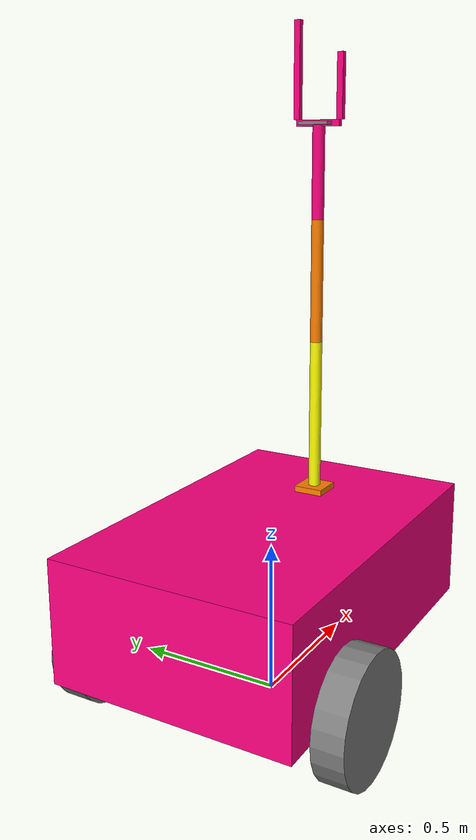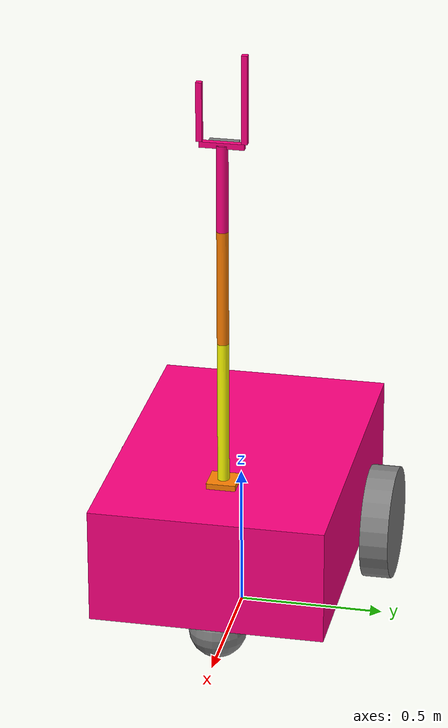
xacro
<?xml version="1.0"?>
<robot name="my_robot" xmlns:xacro="http://www.ros.org/wiki/xacro">

    <xacro:include filename="common_properties.xacro" />
    <xacro:include filename="mobile_base.xacro" />
    <xacro:include filename="mobile_base_gazebo.xacro" />
    <xacro:include filename="arm.xacro" />
    <xacro:include filename="arm_gazebo.xacro" />
    <xacro:include filename="camera.xacro" />

    <joint name = "mobile_base_arm_joint" type = "revolute">
        <parent link = "base_link"/>
        <child link = "arm_base_link"/>
        <origin xyz = "${base_length/4} 0 ${base_height}" rpy= "0 0 0"/>
        <axis xyz = "0 0 1"/>
        <limit lower = "${-pi}" upper = "${pi}" effort = "100" velocity = "100"/>
        <dynamics friction = "0.3" damping = "0.3"/>
    </joint>

</robot>

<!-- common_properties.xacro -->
<robot xmlns:xacro="http://www.ros.org/wiki/xacro">

    <material name="blue">
        <color rgba="1 0 .5 1" />
    </material>

    <material name="grey">
        <color rgba="0.5 0.5 0.5 1" />
    </material>

    <material name="orange">
        <color rgba="1.0 .5 0 1" />
    </material>

    <material name="yellow">
        <color rgba="1 1 0 1" />
    </material>

    <xacro:macro name="box_inertia" params = "m x y z o_xyz o_rpy">
        <inertial>
            <mass value="${m}"/>
            <origin xyz = "${o_xyz}" rpy = "${o_rpy}"/>
            <inertia ixx = "${m/12 *  (y*y +z*z) }" ixy="0" ixz="0"
                     iyy = "${m/12 *  (x*x +z*z) }" iyz="0"
                     izz = "${m/12 *  (y*y +x*x) }" />
        </inertial>
    </xacro:macro>

    <xacro:macro name="wheel_inertia" params = "m r l o_xyz o_rpy">
        <inertial>
            <mass value="${m}"/>
            <origin xyz = "${o_xyz}" rpy = "${o_rpy}"/>
            <inertia ixx = "${m/12 *  (3*r*r + l*l)}" ixy="0" ixz="0"
                     iyy = "${m/12 *  (3*r*r + l*l) }" iyz="0"
                     izz = "${m/2*r*r}" />
        </inertial>
    </xacro:macro>

    <xacro:macro name="sphere_inertia" params = "m r o_xyz o_rpy">
        <inertial>
            <mass value="${m}"/>
            <origin xyz = "${o_xyz}" rpy = "${o_rpy}"/>
            <inertia ixx = "${2*m/5 *r*r}" ixy="0" ixz="0"
                     iyy = "${2*m/5 *r*r}" iyz="0"
                     izz = "${2*m/5 *r*r}" />
        </inertial>
    </xacro:macro>

</robot>

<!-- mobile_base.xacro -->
<robot xmlns:xacro="http://www.ros.org/wiki/xacro">

    <xacro:property name = "base_length" value = "1.2" />
    <xacro:property name = "base_width" value = ".8" />
    <xacro:property name = "base_height" value = ".4" />
    <xacro:property name = "wheel_radius" value = ".2" />
    <xacro:property name = "wheel_length" value = ".1" />

    <link name="base_footprint"/>

    <link name="base_link">
        <visual>
            <geometry>
                <box size="${base_length} ${base_width} ${base_height}"/>
            </geometry>
            <origin xyz = "0 0 ${base_height/2}" rpy="0 0 0" />
            <material name="blue"/>
        </visual>

        <collision>
            <geometry>
                <box size="${base_length} ${base_width} ${base_height}"/>
            </geometry>
            <origin xyz = "0 0 ${base_height/2}" rpy="0 0 0" />
        </collision>
        <xacro:box_inertia m = "5.0" x = "${base_length}" y = "${base_width}" z = "${base_height}"
                            o_xyz="0 0 ${base_height/2}" o_rpy="0 0 0"/>
    </link>

    <xacro:macro name = "wheel_link" params="prefix">
        <link name="${prefix}_wheel_link">
            <visual>
                <geometry>
                    <cylinder radius = "${wheel_radius}" length = "${wheel_length}"/>
                </geometry>
                <origin xyz = "0 0 0" rpy = "${pi / 2.0} 0 0" />
                <material name = "grey"/>
            </visual>
            <collision>
                <geometry>
                    <sphere radius = "${wheel_radius}"/>
                </geometry>
                <origin xyz = "0 0 0" rpy = "${pi / 2.0} 0 0" />
            </collision>
            <xacro:wheel_inertia m = "1" r = "${wheel_radius}" l = "${wheel_length}"
                                 o_xyz="0 0 0" o_rpy="${pi / 2.0} 0 0"/>
        </link>
    </xacro:macro>

    <xacro:wheel_link prefix="right"/>
    <xacro:wheel_link prefix="left"/>

    <link name="caster_wheel_link">
        <visual>
            <geometry>
                <sphere radius = "${wheel_radius/2}"/>
            </geometry>
            <origin xyz = "0 0 0" rpy="0 0 0" />
            <material name="grey"/>
        </visual>

        <collision>
            <geometry>
                <sphere radius = "${wheel_radius/2}"/>
            </geometry>
            <origin xyz = "0 0 0" rpy = "${pi / 2.0} 0 0" />
        </collision>

        <xacro:sphere_inertia m = ".05" r = "${wheel_radius}" o_xyz="0 0 0" o_rpy="0 0 0"/>
    </link>

    <joint name="base_joint" type="fixed">
        <parent link = "base_footprint"/>
        <child link="base_link"/>
        <origin xyz = "0 0 ${wheel_radius}" rpy = "0 0 0"/>
    </joint>

    <joint name="base_right_wheel_joint" type="continuous">
        <parent link = "base_link"/>
        <child link="right_wheel_link"/>
        <origin xyz = "${-base_length/4} ${-(base_width/2 + wheel_length /2)} 0" rpy = "0 0 0"/>
        <axis xyz = "0 1 0"/>
    </joint>

    <joint name="base_left_wheel_joint" type="continuous">
        <parent link = "base_link"/>
        <child link="left_wheel_link"/>
        <origin xyz = "${-base_length/4} ${base_width/2 + wheel_length /2} 0" rpy = "0 0 0"/>
        <axis xyz = "0 1 0"/>
    </joint>

    <joint name="base_caster_wheel_joint" type="fixed">
        <parent link = "base_link"/>
        <child link="caster_wheel_link"/>
        <origin xyz = "${base_length/3} 0 ${-wheel_radius/2}" rpy = "0 0 0"/>
    </joint>

</robot>

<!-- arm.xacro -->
<robot xmlns:xacro="http://www.ros.org/wiki/xacro">

    <xacro:property name = "arm_base_length" value = ".1" />
    <xacro:property name = "arm_base_width" value = ".1" />
    <xacro:property name = "arm_base_height" value = ".02" />
    <xacro:property name = "forearm_radius" value = ".02" />
    <xacro:property name = "forearm_length" value = ".5" />
    <xacro:property name = "hand_radius" value = ".02" />
    <xacro:property name = "hand_length" value = ".4" />
    <xacro:property name = "hand_2_radius" value = ".02" />
    <xacro:property name = "hand_2_length" value = ".3" />
    <xacro:property name = "eef_length" value = ".02" />
    <xacro:property name = "eef_width" value = ".15" />
    <xacro:property name = "eef_height" value = ".02" />
    <xacro:property name = "eef_left_length" value = ".02" />
    <xacro:property name = "eef_left_width" value = ".02" />
    <xacro:property name = "eef_left_height" value = ".30" />
    <xacro:property name = "eef_right_length" value = ".02" />
    <xacro:property name = "eef_right_width" value = ".02" />
    <xacro:property name = "eef_right_height" value = ".20" />

    <!-- COMMENT LINE OUT IF NOT USING "STANDALONE ARM" SETUP -->
    <!-- COMMENT LINE OUT IF NOT USING "STANDALONE ARM" SETUP -->

    <link name="arm_base_link">
        <visual>
            <geometry>
                <box size="${arm_base_length} ${arm_base_width} ${arm_base_height}"/>
            </geometry>
            <origin xyz = "0 0 ${arm_base_height/2.0}" rpy="0 0 0" />
            <material name="orange"/>
        </visual>

        <collision>
            <geometry>
                <box size="${arm_base_length} ${arm_base_width} ${arm_base_height}"/>
            </geometry>
            <origin xyz = "0 0 ${arm_base_height/2.0}" rpy="0 0 0" />
        </collision>
        <xacro:box_inertia m = "5.0" x = "${arm_base_length}" y = "${arm_base_width}" z = "${arm_base_height}" o_xyz="0 0 ${arm_base_height/2}" o_rpy="0 0 0"/>
    </link>

    <!-- COMMENT LINE OUT IF NOT USING "STANDALONE ARM" SETUP -->
    <!-- COMMENT LINE OUT IF NOT USING "STANDALONE ARM" SETUP -->

    <link name="forearm_link">
        <visual>
            <geometry>
                <cylinder radius="${forearm_radius}" length = "${forearm_length}" />
            </geometry>
            <origin xyz = "0 0 ${forearm_length/2}" rpy="0 0 0" />
            <material name="yellow"/>
        </visual>

        <collision>
            <geometry>
                <cylinder radius="${forearm_radius}" length = "${forearm_length}" />
            </geometry>
            <origin xyz = "0 0 ${forearm_length/2}" rpy="0 0 0" />
        </collision>

        <xacro:wheel_inertia m = ".3" r = "${forearm_radius}" l = "${forearm_length}"
                                o_xyz="0 0 ${forearm_length/2}" o_rpy="0 0 0"/>

    </link>

    <joint name="base_forearm_joint" type = "revolute">
        <parent link = "arm_base_link"/>
        <child link = "forearm_link"/>
        <origin xyz = "0 0 ${arm_base_height}" rpy = "0 0 0"/>
        <axis xyz = "0 1 0"/>
        <limit lower = "0" upper = "${pi/2}" effort = "100" velocity = "100"/>
        <dynamics friction = "0.3" damping = "1"/>
    </joint>

    <link name="hand_link">
        <visual>
            <geometry>
                <cylinder radius="${hand_radius}" length = "${hand_length}" />
            </geometry>
            <origin xyz = "0 0 ${hand_length/2}" rpy="0 0 0" />
            <material name="orange"/>
        </visual>

        <collision>
            <geometry>
                <cylinder radius="${hand_radius}" length = "${hand_length}" />
            </geometry>
            <origin xyz = "0 0 ${hand_length/2}" rpy="0 0 0" />
        </collision>

        <xacro:wheel_inertia m = ".3" r = "${hand_radius}" l = "${hand_length}"
                                o_xyz="0 0 ${hand_length/2}" o_rpy="0 0 0"/>

    </link>

    <joint name="forearm_hand_joint" type = "revolute">
        <parent link = "forearm_link"/>
        <child link = "hand_link"/>
        <origin xyz = "0 0 ${forearm_length}" rpy = "0 0 0"/>
        <axis xyz = "0 1 0"/>
        <limit lower = "0" upper = "${pi/2}" effort = "100" velocity = "100"/>
        <dynamics friction = "0.3" damping = "1"/>
    </joint>

    <link name="hand_2_link">
        <visual>
            <geometry>
                <cylinder radius="${hand_2_radius}" length = "${hand_2_length}" />
            </geometry>
            <origin xyz = "0 0 ${hand_2_length/2}" rpy="0 0 0" />
            <material name="blue"/>
        </visual>

        <collision>
            <geometry>
                <cylinder radius="${hand_2_radius}" length = "${hand_2_length}" />
            </geometry>
            <origin xyz = "0 0 ${hand_2_length/2}" rpy="0 0 0" />
        </collision>

        <xacro:wheel_inertia m = ".3" r = "${hand_2_radius}" l = "${hand_2_length}"
                                o_xyz="0 0 ${hand_2_length/2}" o_rpy="0 0 0"/>

    </link>

    <joint name="hand_hand_2_joint" type = "revolute">
        <parent link = "hand_link"/>
        <child link = "hand_2_link"/>
        <origin xyz = "0 0 ${hand_length}" rpy = "0 0 0"/>
        <axis xyz = "0 1 0"/>
        <limit lower = "0" upper = "${pi/2}" effort = "100" velocity = "100"/>
        <dynamics friction = "0.9" damping = "1"/>
    </joint>

    <link name="eef_link">
        <visual>
            <geometry>
                <box size="${eef_length} ${eef_width} ${eef_height}"/>
            </geometry>
            <origin xyz = "0 0 0" rpy="0 0 0" />
            <material name="blue"/>
        </visual>

        <collision>
            <geometry>
                <box size="${eef_length} ${eef_width} ${eef_height}"/>
            </geometry>
            <origin xyz = "0 0 0" rpy="0 0 0" />
        </collision>
        <xacro:box_inertia m = ".3" x = "${eef_length}" y = "${eef_width}" z = "${eef_height}"
                            o_xyz="0 0 0" o_rpy="0 0 0"/>
    </link>

    <joint name="hand_2_eef_joint" type = "fixed">
        <parent link = "hand_2_link"/>
        <child link = "eef_link"/>
        <origin xyz = "0 0 ${hand_2_length}" rpy = "0 0 0"/>
        <axis xyz = "0 0 0"/>
    </joint>

    <link name="eef_left_link">
        <visual>
            <geometry>
                <box size="${eef_left_length} ${eef_left_width} ${eef_left_height}"/>
            </geometry>
            <origin xyz = "0 0 ${eef_left_height/2}" rpy="0 0 0" />
            <material name="blue"/>
        </visual>

        <collision>
            <geometry>
                <box size="${eef_left_length} ${eef_left_width} ${eef_left_height}"/>
            </geometry>
            <origin xyz = "0 0 ${eef_left_height}" rpy="0 0 0" />
        </collision>
        <xacro:box_inertia m = ".3" x = "${eef_left_length}" y = "${eef_left_width}" z = "${eef_left_height}"
                            o_xyz="0 0 0" o_rpy="0 0 0"/>
    </link>

    <joint name="eef_eef_left_joint" type = "revolute">
        <parent link = "eef_link"/>
        <child link = "eef_left_link"/>
        <origin xyz = "0 ${eef_width/2} ${eef_height/2}" rpy = "0 0 0"/>
        <axis xyz = "1 0 0"/>
        <limit lower = "0" upper = ".60" effort = "100" velocity = "100"/>
        <dynamics friction = "0.3" damping = "1"/>
    </joint>

    <link name="eef_right_link">
        <visual>
            <geometry>
                <box size="${eef_right_length} ${eef_right_width} ${eef_right_height}"/>
            </geometry>
            <origin xyz = "0 0 0" rpy="0 0 0" />
            <material name="blue"/>
        </visual>

        <collision>
            <geometry>
                <box size="${eef_right_length} ${eef_right_width} ${eef_right_height}"/>
            </geometry>
            <origin xyz = "0 0 0" rpy="0 0 0" />
        </collision>
        <xacro:box_inertia m = ".3" x = "${eef_right_length}" y = "${eef_right_width}" z = "${eef_right_height}"
                            o_xyz="0 0 0" o_rpy="0 0 0"/>
    </link>

    <joint name="eef_eef_right_joint" type = "fixed">
        <parent link = "eef_link"/>
        <child link = "eef_right_link"/>
        <origin xyz = "0 -${eef_width/2} ${eef_height/2+eef_right_height/2}" rpy = "0 0 0"/>
        <axis xyz = "0 0 0"/>
    </joint>

</robot>

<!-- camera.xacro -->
<robot xmlns:xacro="http://www.ros.org/wiki/xacro">

    <xacro:property name="camera_length" value="0.01" />
    <xacro:property name="camera_width" value="0.1" />
    <xacro:property name="camera_height" value="0.05" />

    <link name="camera_link">
        <visual>
            <geometry>
                <box size="${camera_length} ${camera_width} ${camera_height}" />
            </geometry>
            <material name="grey" />
        </visual>
        <collision>
            <geometry>
                <box size="${camera_length} ${camera_width} ${camera_height}" />
            </geometry>
        </collision>
        <xacro:box_inertia m="0.1" x="${camera_length}" y="${camera_width}" z="${camera_height}"
                           o_xyz="0 0 0" o_rpy="0 0 0" />
    </link>

    <joint name="base_camera_joint" type="fixed">
        <parent link="hand_2_link" />
        <child link="camera_link" />
        <origin xyz="${-hand_2_radius} 0 ${hand_2_length}" rpy="0 ${-pi/2} 0" />
    </joint>

    <link name="camera_link_optical" />

    <joint name="camera_optical_joint" type="fixed">
        <origin xyz="0 0 0" rpy="${-pi/2} 0 ${-pi/2}"/>
        <parent link="camera_link"/>
        <child link="camera_link_optical"/>
    </joint>

    <gazebo reference="camera_link">
        <sensor name="camera" type="camera">
            <camera>
                <horizontal_fov>1.3962634</horizontal_fov>
                <image>
                    <width>640</width>
                    <height>480</height>
                    <format>R8G8B8</format>
                </image>
                <clip>
                    <near>0.1</near>
                    <far>15</far>
                </clip>
                <noise>
                    <type>gaussian</type>
                    <mean>0.0</mean>
                    <stddev>0.007</stddev>
                </noise>
                <optical_frame_id>camera_link_optical</optical_frame_id>
                <camera_info_topic>camera/camera_info</camera_info_topic>
            </camera>
            <always_on>1</always_on>
            <update_rate>20</update_rate>
            <visualize>true</visualize>
            <topic>camera/image_raw</topic>
        </sensor>
    </gazebo>

</robot>
